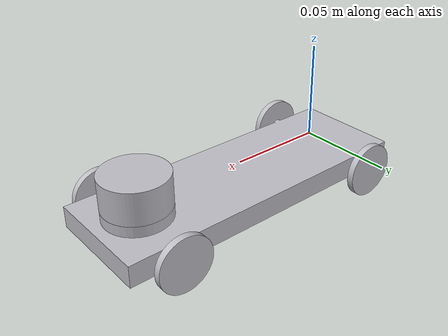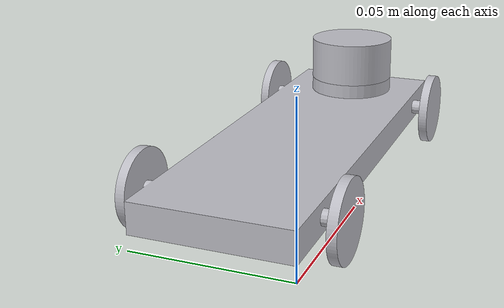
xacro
<?xml version="1.0" ?>
<robot name="robot" xmlns:xacro="http://www.ros.org/wiki/xacro">

<xacro:include filename="$(find robot_description)/urdf/materials.xacro" />
<xacro:include filename="$(find robot_description)/urdf/robot.trans" />
<xacro:include filename="$(find robot_description)/urdf/robot.gazebo" />
<link name="base_link">
  <inertial>
    <origin rpy="0 0 0" xyz="0.07492781136028881 0.025 0.010346830193895724"/>
    <mass value="0.5999518779133473"/>
    <inertia ixx="0.000129" ixy="-0.0" ixz="-1e-05" iyy="0.001086" iyz="0.0" izz="0.001203"/>
  </inertial>
  <visual>
    <origin rpy="0 0 0" xyz="0 0 0"/>
    <geometry>
      <mesh filename="package://robot_description/meshes/base_link.stl" scale="0.001 0.001 0.001"/>
    </geometry>
    <material name="silver"/>
  </visual>
  <collision>
    <origin rpy="0 0 0" xyz="0 0 0"/>
    <geometry>
      <mesh filename="package://robot_description/meshes/base_link.stl" scale="0.001 0.001 0.001"/>
    </geometry>
  </collision>
</link>

<link name="Lidar_1">
  <inertial>
    <origin rpy="0 0 0" xyz="2.7755575615628914e-17 3.469446951953614e-18 0.0075"/>
    <mass value="0.08323257036604459"/>
    <inertia ixx="6e-06" ixy="0.0" ixz="0.0" iyy="6e-06" iyz="0.0" izz="9e-06"/>
  </inertial>
  <visual>
    <origin rpy="0 0 0" xyz="-0.125 -0.025 -0.02"/>
    <geometry>
      <mesh filename="package://robot_description/meshes/Lidar_1.stl" scale="0.001 0.001 0.001"/>
    </geometry>
    <material name="silver"/>
  </visual>
  <collision>
    <origin rpy="0 0 0" xyz="-0.125 -0.025 -0.02"/>
    <geometry>
      <mesh filename="package://robot_description/meshes/Lidar_1.stl" scale="0.001 0.001 0.001"/>
    </geometry>
  </collision>
</link>

<link name="Wheel_2_1">
  <inertial>
    <origin rpy="0 0 0" xyz="2.980232241545089e-10 -0.0014999999999999233 7.450580603862722e-11"/>
    <mass value="0.011560079217506182"/>
    <inertia ixx="0.0" ixy="0.0" ixz="0.0" iyy="1e-06" iyz="-0.0" izz="0.0"/>
  </inertial>
  <visual>
    <origin rpy="0 0 0" xyz="-0.02 0.005 -0.01"/>
    <geometry>
      <mesh filename="package://robot_description/meshes/Wheel_2_1.stl" scale="0.001 0.001 0.001"/>
    </geometry>
    <material name="silver"/>
  </visual>
  <collision>
    <origin rpy="0 0 0" xyz="-0.02 0.005 -0.01"/>
    <geometry>
      <mesh filename="package://robot_description/meshes/Wheel_2_1.stl" scale="0.001 0.001 0.001"/>
    </geometry>
  </collision>
</link>

<link name="Wheel_4_1">
  <inertial>
    <origin rpy="0 0 0" xyz="2.980232241545089e-10 0.0015000000000000013 7.450580950807417e-11"/>
    <mass value="0.011560079217506217"/>
    <inertia ixx="0.0" ixy="-0.0" ixz="-0.0" iyy="1e-06" iyz="0.0" izz="0.0"/>
  </inertial>
  <visual>
    <origin rpy="0 0 0" xyz="-0.02 -0.055 -0.01"/>
    <geometry>
      <mesh filename="package://robot_description/meshes/Wheel_4_1.stl" scale="0.001 0.001 0.001"/>
    </geometry>
    <material name="silver"/>
  </visual>
  <collision>
    <origin rpy="0 0 0" xyz="-0.02 -0.055 -0.01"/>
    <geometry>
      <mesh filename="package://robot_description/meshes/Wheel_4_1.stl" scale="0.001 0.001 0.001"/>
    </geometry>
  </collision>
</link>

<link name="_Wheel_3_1">
  <inertial>
    <origin rpy="0 0 0" xyz="1.8626451769865326e-09 0.0015000000000000221 7.450580603862722e-11"/>
    <mass value="0.011560079217506217"/>
    <inertia ixx="0.0" ixy="0.0" ixz="0.0" iyy="1e-06" iyz="0.0" izz="0.0"/>
  </inertial>
  <visual>
    <origin rpy="0 0 0" xyz="-0.125 -0.055 -0.01"/>
    <geometry>
      <mesh filename="package://robot_description/meshes/_Wheel_3_1.stl" scale="0.001 0.001 0.001"/>
    </geometry>
    <material name="silver"/>
  </visual>
  <collision>
    <origin rpy="0 0 0" xyz="-0.125 -0.055 -0.01"/>
    <geometry>
      <mesh filename="package://robot_description/meshes/_Wheel_3_1.stl" scale="0.001 0.001 0.001"/>
    </geometry>
  </collision>
</link>

<link name="Wheel_1_1">
  <inertial>
    <origin rpy="0 0 0" xyz="1.8626451769865326e-09 -0.001500000000000003 7.450582338586198e-11"/>
    <mass value="0.011560079217506182"/>
    <inertia ixx="0.0" ixy="-0.0" ixz="0.0" iyy="1e-06" iyz="-0.0" izz="0.0"/>
  </inertial>
  <visual>
    <origin rpy="0 0 0" xyz="-0.125 0.005 -0.01"/>
    <geometry>
      <mesh filename="package://robot_description/meshes/Wheel_1_1.stl" scale="0.001 0.001 0.001"/>
    </geometry>
    <material name="silver"/>
  </visual>
  <collision>
    <origin rpy="0 0 0" xyz="-0.125 0.005 -0.01"/>
    <geometry>
      <mesh filename="package://robot_description/meshes/Wheel_1_1.stl" scale="0.001 0.001 0.001"/>
    </geometry>
  </collision>
</link>

<joint name="Rev1" type="continuous">
  <origin rpy="0 0 0" xyz="0.125 0.025 0.02"/>
  <parent link="base_link"/>
  <child link="Lidar_1"/>
  <axis xyz="0.0 0.0 1.0"/>
</joint>

<joint name="Rev3" type="continuous">
  <origin rpy="0 0 0" xyz="0.02 -0.005 0.01"/>
  <parent link="base_link"/>
  <child link="Wheel_2_1"/>
  <axis xyz="0.0 -1.0 -0.0"/>
</joint>

<joint name="Rev4" type="continuous">
  <origin rpy="0 0 0" xyz="0.02 0.055 0.01"/>
  <parent link="base_link"/>
  <child link="Wheel_4_1"/>
  <axis xyz="0.0 1.0 -0.0"/>
</joint>

<joint name="Rev5" type="continuous">
  <origin rpy="0 0 0" xyz="0.125 0.055 0.01"/>
  <parent link="base_link"/>
  <child link="_Wheel_3_1"/>
  <axis xyz="0.0 1.0 -0.0"/>
</joint>

<joint name="Rev6" type="continuous">
  <origin rpy="0 0 0" xyz="0.125 -0.005 0.01"/>
  <parent link="base_link"/>
  <child link="Wheel_1_1"/>
  <axis xyz="0.0 -1.0 -0.0"/>
</joint>

</robot>

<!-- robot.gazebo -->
<robot name="robot" xmlns:xacro="http://www.ros.org/wiki/xacro" >

<xacro:property name="body_color" value="Gazebo/Silver" />

<gazebo>
  <plugin filename="libgazebo_ros_control.so" name="control"/>
</gazebo>
<gazebo reference="base_link">
  <material>${body_color}</material>
  <mu1>0.2</mu1>
  <mu2>0.2</mu2>
  <selfCollide>true</selfCollide>
  <gravity>true</gravity>
</gazebo>

<gazebo reference="Lidar_1">
  <material>${body_color}</material>
  <mu1>0.2</mu1>
  <mu2>0.2</mu2>
  <selfCollide>true</selfCollide>
</gazebo>

<gazebo reference="Wheel_2_1">
  <material>${body_color}</material>
  <mu1>0.2</mu1>
  <mu2>0.2</mu2>
  <selfCollide>true</selfCollide>
</gazebo>

<gazebo reference="Wheel_4_1">
  <material>${body_color}</material>
  <mu1>0.2</mu1>
  <mu2>0.2</mu2>
  <selfCollide>true</selfCollide>
</gazebo>

<gazebo reference="_Wheel_3_1">
  <material>${body_color}</material>
  <mu1>0.2</mu1>
  <mu2>0.2</mu2>
  <selfCollide>true</selfCollide>
</gazebo>

<gazebo reference="Wheel_1_1">
  <material>${body_color}</material>
  <mu1>0.2</mu1>
  <mu2>0.2</mu2>
  <selfCollide>true</selfCollide>
</gazebo>

</robot>
